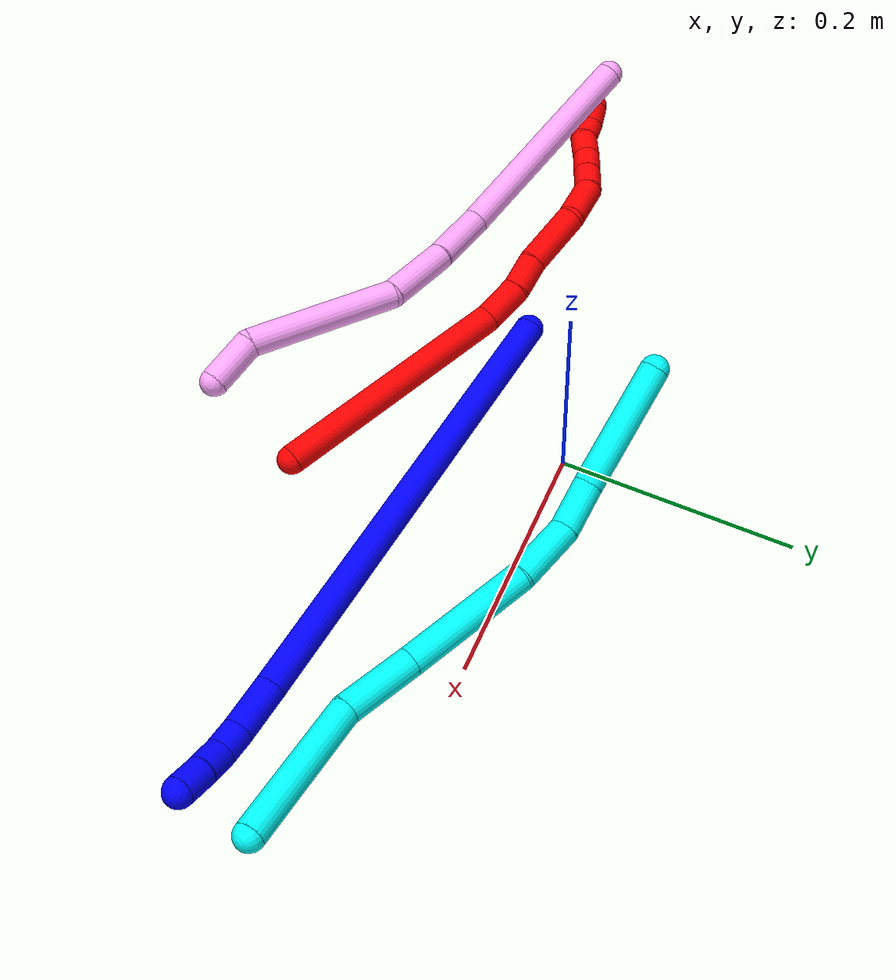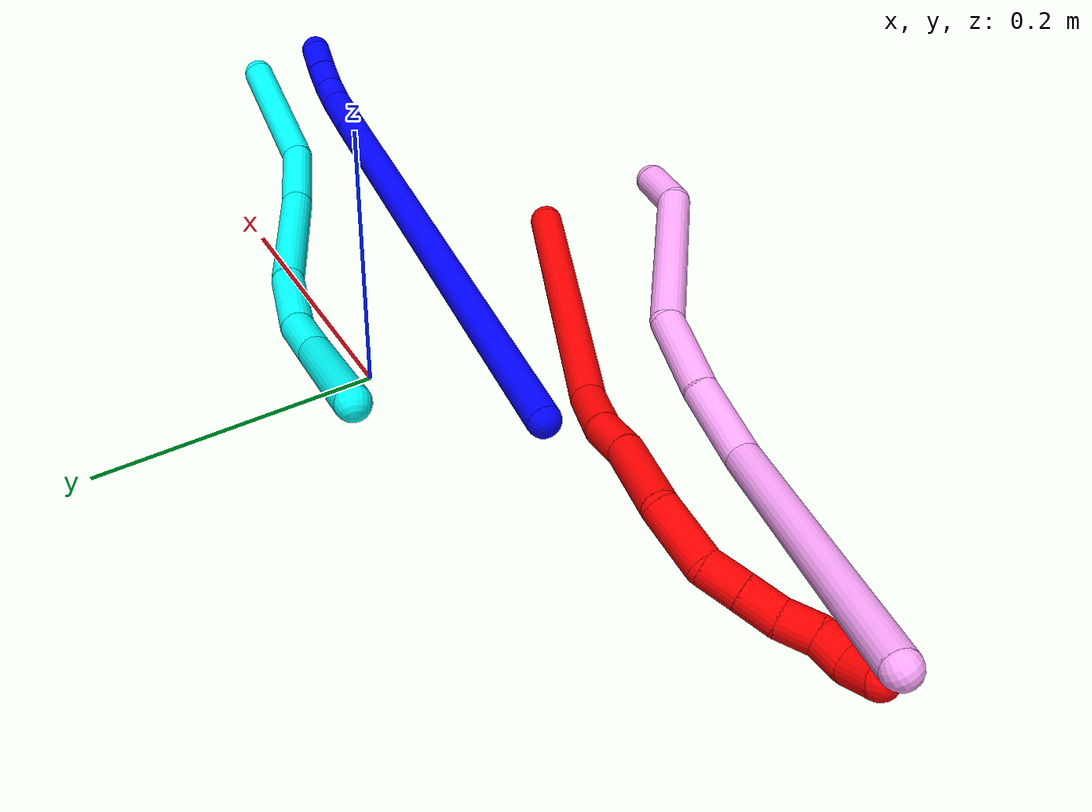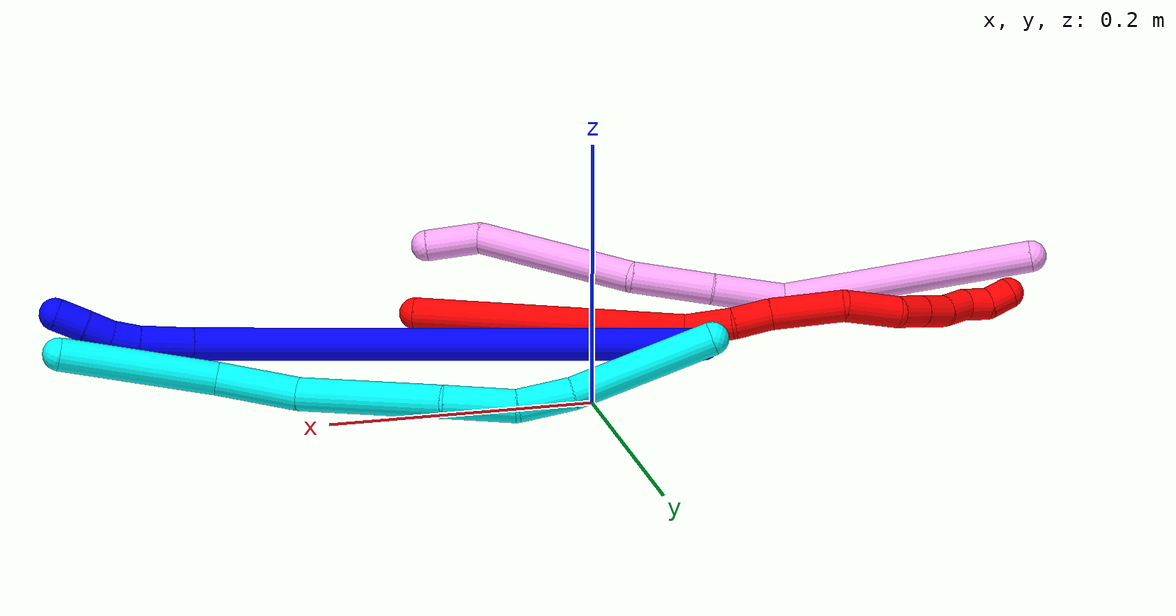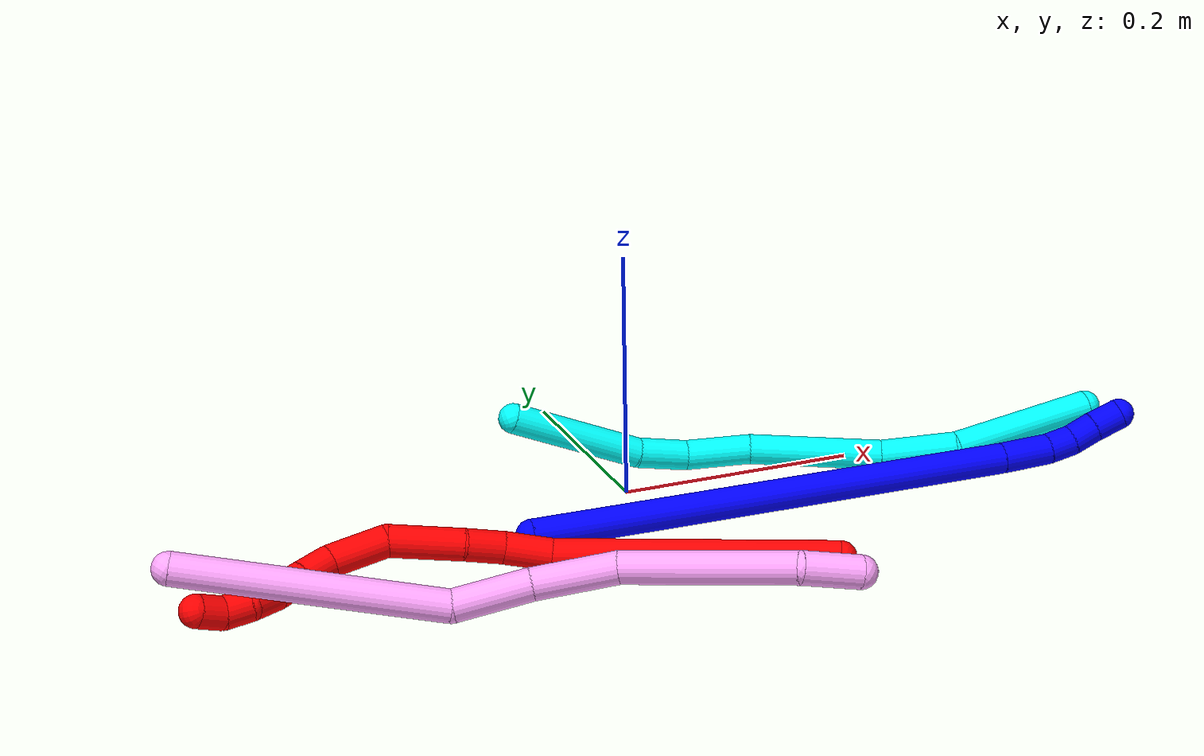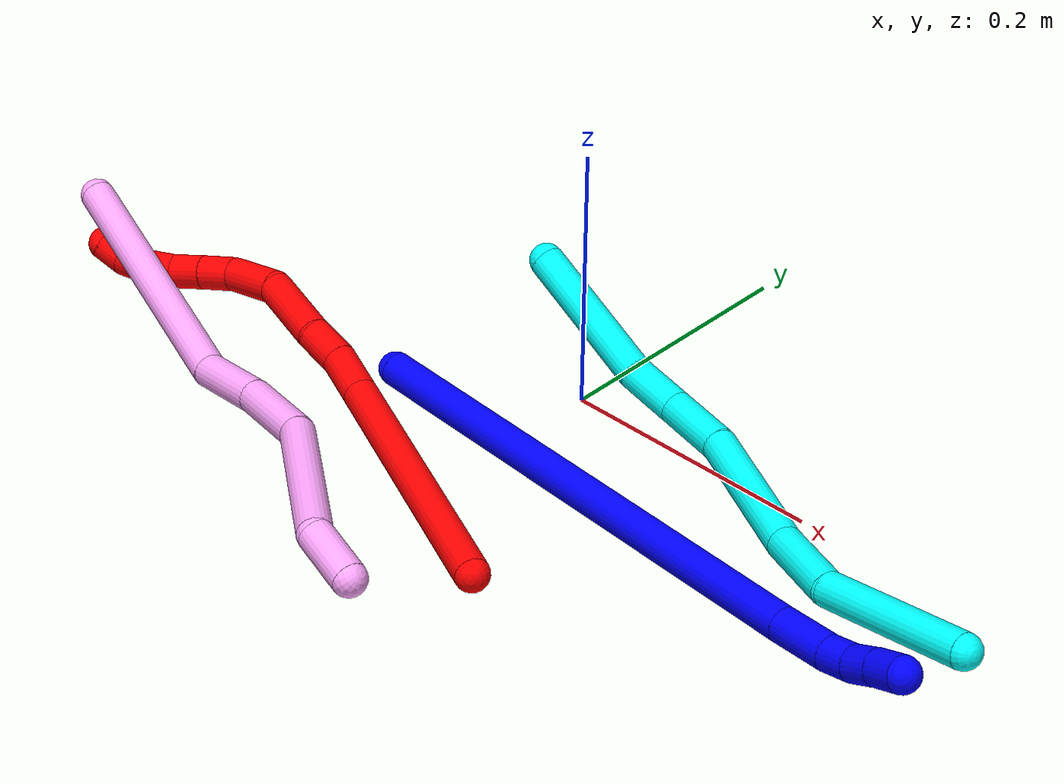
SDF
<sdf version="1.7">
 <world name="default">
  <plugin name="TubeGeneratorPlugin" filename="libtube_generator_plugin.so"/>
  <model name="photoneo_s_sensor">
   <static>1</static>
   <pose>0 0 2 1.57079 1.57079 3.14159</pose>
   <link name="link">
    <inertial><mass>0.1</mass></inertial>
    <sensor name="sensor" type="depth">
     <update_rate>30</update_rate>
     <camera>
      <horizontal_fov>1.22</horizontal_fov>
      <image><width>1920</width><height>1200</height><format>B8G8R8</format></image>
      <clip><near>0.1</near><far>4</far></clip>
      <depth_camera><output>points</output></depth_camera>
     </camera>
     <plugin name="camera_plugin" filename="libgazebo_ros_depth_camera.so">
      <baseline>0.2</baseline>
      <alwaysOn>1</alwaysOn>
      <updateRate>0.0</updateRate>
      <cameraName>camera_ir</cameraName>
      <imageTopicName>/camera/color/image_raw</imageTopicName>
      <cameraInfoTopicName>/camera/color/camera_info</cameraInfoTopicName>
      <depthImageTopicName>/camera/depth/image_raw</depthImageTopicName>
      <depthImageCameraInfoTopicName>/camera/depth/camera_info</depthImageCameraInfoTopicName>
      <pointCloudTopicName>/camera/depth/points</pointCloudTopicName>
      <frameName>fr_optical</frameName>
      <pointCloudCutoff>0.1</pointCloudCutoff>
      <pointCloudCutoffMax>2.0</pointCloudCutoffMax>
      <distortionK1>0</distortionK1>
      <distortionK2>0</distortionK2>
      <distortionK3>0</distortionK3>
      <distortionT1>0</distortionT1>
      <distortionT2>0</distortionT2>
      <CxPrime>0</CxPrime>
      <Cx>0</Cx>
      <Cy>0</Cy>
      <focalLength>0</focalLength>
      <hackBaseline>0</hackBaseline>
     </plugin>
    </sensor>
   </link>
  </model>
  <gravity>0 0 -9.8</gravity>
  <magnetic_field>6e-06 2.3e-05 -4.2e-05</magnetic_field>
  <atmosphere type="adiabatic"/>
  <physics name="default_physics" default="0" type="ode">
   <max_step_size>0.003</max_step_size>
   <real_time_factor>1</real_time_factor>
   <real_time_update_rate>1000</real_time_update_rate>
   <max_contacts>10000</max_contacts>
   <ode>
    <solver>
     <type>quick</type>
     <iters>100</iters>
     <sor>1.3</sor>
     <use_dynamic_moi_rescaling>0</use_dynamic_moi_rescaling>
    </solver>
    <constraints>
     <contact_max_correcting_vel>0</contact_max_correcting_vel>
     <contact_surface_layer>0.001</contact_surface_layer>
     <cfm>0</cfm>
     <erp>0.2</erp>
    </constraints>
   </ode>
  </physics>
  <scene><ambient>0.4 0.4 0.4 1</ambient><background>0.7 0.7 0.7 1</background><shadows>0</shadows></scene>
  <audio><device>default</device></audio>
  <spherical_coordinates>
   <surface_model>EARTH_WGS84</surface_model>
   <latitude_deg>0</latitude_deg>
   <longitude_deg>0</longitude_deg>
   <elevation>0</elevation>
   <heading_deg>0</heading_deg>
  </spherical_coordinates>
  <model name="bin">
   <static>1</static>
   <link name="bottom">
    <collision name="collision-bottom">
     <pose>0 0 -0.01 0 -0 0</pose>
     <geometry><box><size>0.8 0.6 0.02</size></box></geometry>
     <surface>
      <friction><ode><mu>100</mu><mu2>100</mu2></ode></friction>
      <contact><collide_bitmask>65535</collide_bitmask></contact>
     </surface>
    </collision>
   </link>
   <link name="west_wall">
    <collision name="collision-west_wall">
     <pose>-0.41 0 0.1 0 -0 0</pose>
     <geometry><box><size>0.02 0.6 0.2</size></box></geometry>
     <surface>
      <friction><ode><mu>100</mu><mu2>100</mu2></ode></friction>
      <contact><collide_bitmask>65535</collide_bitmask></contact>
     </surface>
    </collision>
   </link>
   <link name="east_wall">
    <collision name="collision-east_wall">
     <pose>0.41 0 0.1 0 -0 0</pose>
     <geometry><box><size>0.02 0.6 0.2</size></box></geometry>
     <surface>
      <friction><ode><mu>100</mu><mu2>100</mu2></ode></friction>
      <contact><collide_bitmask>65535</collide_bitmask></contact>
     </surface>
    </collision>
   </link>
   <link name="south_wall">
    <collision name="collision-south_wall">
     <pose>0 -0.31 0.1 0 -0 0</pose>
     <geometry><box><size>0.8 0.02 0.2</size></box></geometry>
     <surface>
      <friction><ode><mu>100</mu><mu2>100</mu2></ode></friction>
      <contact><collide_bitmask>65535</collide_bitmask></contact>
     </surface>
    </collision>
   </link>
   <link name="north_wall">
    <collision name="collision-north_wall">
     <pose>0 0.31 0.1 0 -0 0</pose>
     <geometry><box><size>0.8 0.02 0.2</size></box></geometry>
     <surface>
      <friction><ode><mu>100</mu><mu2>100</mu2></ode></friction>
      <contact><collide_bitmask>65535</collide_bitmask></contact>
     </surface>
    </collision>
   </link>
  </model>
  <model name="1">
   <static>0</static>
   <link name="1">
    <collision name="collision-cylinder-e_1_1_4">
     <pose>0.149942 -0.1015 0.075233 0.932943 0.870611 0.460056</pose>
     <geometry><cylinder><radius>0.0125</radius><length>0.392147</length></cylinder></geometry>
     <surface>
      <friction><ode><mu>1.16</mu><mu2>1.16</mu2><slip1>0</slip1><slip2>0</slip2></ode></friction>
      <contact><ode><kp>1e+06</kp><kd>1</kd><max_vel>0</max_vel><min_depth>0.001</min_depth></ode></contact>
     </surface>
    </collision>
    <visual name="visual-cylinder-e_1_1_4">
     <pose>0.149942 -0.1015 0.075233 0.932943 0.870611 0.460056</pose>
     <geometry><cylinder><radius>0.0125</radius><length>0.392147</length></cylinder></geometry>
     <material><ambient>0 0 1 1</ambient></material>
    </visual>
    <collision name="collision-cylinder-e_2_4_5">
     <pose>0.315717 -0.213041 0.158833 0.876105 0.88071 0.434471</pose>
     <geometry><cylinder><radius>0.0125</radius><length>0.041061</length></cylinder></geometry>
     <surface>
      <friction><ode><mu>1.16</mu><mu2>1.16</mu2><slip1>0</slip1><slip2>0</slip2></ode></friction>
      <contact><ode><kp>1e+06</kp><kd>1</kd><max_vel>0</max_vel><min_depth>0.001</min_depth></ode></contact>
     </surface>
    </collision>
    <visual name="visual-cylinder-e_2_4_5">
     <pose>0.315717 -0.213041 0.158833 0.876105 0.88071 0.434471</pose>
     <geometry><cylinder><radius>0.0125</radius><length>0.041061</length></cylinder></geometry>
     <material><ambient>0 0 1 1</ambient></material>
    </visual>
    <collision name="collision-cylinder-e_3_5_6">
     <pose>0.340086 -0.226975 0.172614 0.623353 0.907608 0.311738</pose>
     <geometry><cylinder><radius>0.0125</radius><length>0.021665</length></cylinder></geometry>
     <surface>
      <friction><ode><mu>1.16</mu><mu2>1.16</mu2><slip1>0</slip1><slip2>0</slip2></ode></friction>
      <contact><ode><kp>1e+06</kp><kd>1</kd><max_vel>0</max_vel><min_depth>0.001</min_depth></ode></contact>
     </surface>
    </collision>
    <visual name="visual-cylinder-e_3_5_6">
     <pose>0.340086 -0.226975 0.172614 0.623353 0.907608 0.311738</pose>
     <geometry><cylinder><radius>0.0125</radius><length>0.021665</length></cylinder></geometry>
     <material><ambient>0 0 1 1</ambient></material>
    </visual>
    <collision name="collision-cylinder-e_4_6_7">
     <pose>0.356916 -0.232768 0.184628 0.280263 0.879199 0.132481</pose>
     <geometry><cylinder><radius>0.0125</radius><length>0.021535</length></cylinder></geometry>
     <surface>
      <friction><ode><mu>1.16</mu><mu2>1.16</mu2><slip1>0</slip1><slip2>0</slip2></ode></friction>
      <contact><ode><kp>1e+06</kp><kd>1</kd><max_vel>0</max_vel><min_depth>0.001</min_depth></ode></contact>
     </surface>
    </collision>
    <visual name="visual-cylinder-e_4_6_7">
     <pose>0.356916 -0.232768 0.184628 0.280263 0.879199 0.132481</pose>
     <geometry><cylinder><radius>0.0125</radius><length>0.021535</length></cylinder></geometry>
     <material><ambient>0 0 1 1</ambient></material>
    </visual>
    <collision name="collision-cylinder-e_5_7_2">
     <pose>0.373817 -0.237525 0.198769 0.362186 0.817949 0.158383</pose>
     <geometry><cylinder><radius>0.0125</radius><length>0.023592</length></cylinder></geometry>
     <surface>
      <friction><ode><mu>1.16</mu><mu2>1.16</mu2><slip1>0</slip1><slip2>0</slip2></ode></friction>
      <contact><ode><kp>1e+06</kp><kd>1</kd><max_vel>0</max_vel><min_depth>0.001</min_depth></ode></contact>
     </surface>
    </collision>
    <visual name="visual-cylinder-e_5_7_2">
     <pose>0.373817 -0.237525 0.198769 0.362186 0.817949 0.158383</pose>
     <geometry><cylinder><radius>0.0125</radius><length>0.023592</length></cylinder></geometry>
     <material><ambient>0 0 1 1</ambient></material>
    </visual>
    <collision name="collision-sphere-2">
     <pose>0.382425 -0.240382 0.206311 0 -0 0</pose>
     <geometry><sphere><radius>0.0125</radius></sphere></geometry>
     <surface>
      <friction><ode><mu>1.16</mu><mu2>1.16</mu2><slip1>0</slip1><slip2>0</slip2></ode></friction>
      <contact><ode><kp>1e+06</kp><kd>1</kd><max_vel>0</max_vel><min_depth>0.001</min_depth></ode></contact>
     </surface>
    </collision>
    <visual name="visual-sphere-2">
     <pose>0.382425 -0.240382 0.206311 0 -0 0</pose>
     <geometry><sphere><radius>0.0125</radius></sphere></geometry>
     <material><ambient>0 0 1 1</ambient></material>
    </visual>
    <collision name="collision-sphere-7">
     <pose>0.365209 -0.234667 0.191227 0 -0 0</pose>
     <geometry><sphere><radius>0.0125</radius></sphere></geometry>
     <surface>
      <friction><ode><mu>1.16</mu><mu2>1.16</mu2><slip1>0</slip1><slip2>0</slip2></ode></friction>
      <contact><ode><kp>1e+06</kp><kd>1</kd><max_vel>0</max_vel><min_depth>0.001</min_depth></ode></contact>
     </surface>
    </collision>
    <visual name="visual-sphere-7">
     <pose>0.365209 -0.234667 0.191227 0 -0 0</pose>
     <geometry><sphere><radius>0.0125</radius></sphere></geometry>
     <material><ambient>0 0 1 1</ambient></material>
    </visual>
    <collision name="collision-sphere-6">
     <pose>0.348623 -0.230868 0.178029 0 -0 0</pose>
     <geometry><sphere><radius>0.0125</radius></sphere></geometry>
     <surface>
      <friction><ode><mu>1.16</mu><mu2>1.16</mu2><slip1>0</slip1><slip2>0</slip2></ode></friction>
      <contact><ode><kp>1e+06</kp><kd>1</kd><max_vel>0</max_vel><min_depth>0.001</min_depth></ode></contact>
     </surface>
    </collision>
    <visual name="visual-sphere-6">
     <pose>0.348623 -0.230868 0.178029 0 -0 0</pose>
     <geometry><sphere><radius>0.0125</radius></sphere></geometry>
     <material><ambient>0 0 1 1</ambient></material>
    </visual>
    <collision name="collision-sphere-5">
     <pose>0.33155 -0.223082 0.167199 0 -0 0</pose>
     <geometry><sphere><radius>0.0125</radius></sphere></geometry>
     <surface>
      <friction><ode><mu>1.16</mu><mu2>1.16</mu2><slip1>0</slip1><slip2>0</slip2></ode></friction>
      <contact><ode><kp>1e+06</kp><kd>1</kd><max_vel>0</max_vel><min_depth>0.001</min_depth></ode></contact>
     </surface>
    </collision>
    <visual name="visual-sphere-5">
     <pose>0.33155 -0.223082 0.167199 0 -0 0</pose>
     <geometry><sphere><radius>0.0125</radius></sphere></geometry>
     <material><ambient>0 0 1 1</ambient></material>
    </visual>
    <collision name="collision-sphere-1">
     <geometry><sphere><radius>0.0125</radius></sphere></geometry>
     <surface>
      <friction><ode><mu>1.16</mu><mu2>1.16</mu2><slip1>0</slip1><slip2>0</slip2></ode></friction>
      <contact><ode><kp>1e+06</kp><kd>1</kd><max_vel>0</max_vel><min_depth>0.001</min_depth></ode></contact>
     </surface>
    </collision>
    <visual name="visual-sphere-1">
     <geometry><sphere><radius>0.0125</radius></sphere></geometry>
     <material><ambient>0 0 1 1</ambient></material>
    </visual>
    <collision name="collision-sphere-4">
     <pose>0.299884 -0.203 0.150466 0 -0 0</pose>
     <geometry><sphere><radius>0.0125</radius></sphere></geometry>
     <surface>
      <friction><ode><mu>1.16</mu><mu2>1.16</mu2><slip1>0</slip1><slip2>0</slip2></ode></friction>
      <contact><ode><kp>1e+06</kp><kd>1</kd><max_vel>0</max_vel><min_depth>0.001</min_depth></ode></contact>
     </surface>
    </collision>
    <visual name="visual-sphere-4">
     <pose>0.299884 -0.203 0.150466 0 -0 0</pose>
     <geometry><sphere><radius>0.0125</radius></sphere></geometry>
     <material><ambient>0 0 1 1</ambient></material>
    </visual>
    <inertial>
     <pose>0.191272 -0.128169 0.096858 0 -0 0</pose>
     <mass>0.5</mass>
     <inertia>
      <ixx>0.004393</ixx>
      <ixy>0</ixy>
      <ixz>0</ixz>
      <iyy>0.005502</iyy>
      <iyz>0</iyz>
      <izz>-0.001234</izz>
     </inertia>
    </inertial>
   </link>
   <pose>-0.108279 -0.076383 0.012288 0.816481 -0.206443 0.574996</pose>
  </model>
  <model name="2">
   <static>0</static>
   <link name="2">
    <collision name="collision-cylinder-e_1_1_4">
     <pose>-0.0559 0.020686 0.090403 -0.22495 -0.542448 0.062798</pose>
     <geometry><cylinder><radius>0.0125</radius><length>0.216568</length></cylinder></geometry>
     <surface>
      <friction><ode><mu>1.16</mu><mu2>1.16</mu2><slip1>0</slip1><slip2>0</slip2></ode></friction>
      <contact><ode><kp>1e+06</kp><kd>1</kd><max_vel>0</max_vel><min_depth>0.001</min_depth></ode></contact>
     </surface>
    </collision>
    <visual name="visual-cylinder-e_1_1_4">
     <pose>-0.0559 0.020686 0.090403 -0.22495 -0.542448 0.062798</pose>
     <geometry><cylinder><radius>0.0125</radius><length>0.216568</length></cylinder></geometry>
     <material><ambient>1 0 0 1</ambient></material>
    </visual>
    <collision name="collision-cylinder-e_2_4_5">
     <pose>-0.124457 0.044302 0.194158 -0.215954 -0.746997 0.08491</pose>
     <geometry><cylinder><radius>0.0125</radius><length>0.03726</length></cylinder></geometry>
     <surface>
      <friction><ode><mu>1.16</mu><mu2>1.16</mu2><slip1>0</slip1><slip2>0</slip2></ode></friction>
      <contact><ode><kp>1e+06</kp><kd>1</kd><max_vel>0</max_vel><min_depth>0.001</min_depth></ode></contact>
     </surface>
    </collision>
    <visual name="visual-cylinder-e_2_4_5">
     <pose>-0.124457 0.044302 0.194158 -0.215954 -0.746997 0.08491</pose>
     <geometry><cylinder><radius>0.0125</radius><length>0.03726</length></cylinder></geometry>
     <material><ambient>1 0 0 1</ambient></material>
    </visual>
    <collision name="collision-cylinder-e_3_5_6">
     <pose>-0.148624 0.052037 0.216101 -0.510008 -0.863147 0.238956</pose>
     <geometry><cylinder><radius>0.0125</radius><length>0.030289</length></cylinder></geometry>
     <surface>
      <friction><ode><mu>1.16</mu><mu2>1.16</mu2><slip1>0</slip1><slip2>0</slip2></ode></friction>
      <contact><ode><kp>1e+06</kp><kd>1</kd><max_vel>0</max_vel><min_depth>0.001</min_depth></ode></contact>
     </surface>
    </collision>
    <visual name="visual-cylinder-e_3_5_6">
     <pose>-0.148624 0.052037 0.216101 -0.510008 -0.863147 0.238956</pose>
     <geometry><cylinder><radius>0.0125</radius><length>0.030289</length></cylinder></geometry>
     <material><ambient>1 0 0 1</ambient></material>
    </visual>
    <collision name="collision-cylinder-e_4_6_7">
     <pose>-0.179223 0.064319 0.244643 -0.358577 -0.730658 0.138423</pose>
     <geometry><cylinder><radius>0.0125</radius><length>0.057213</length></cylinder></geometry>
     <surface>
      <friction><ode><mu>1.16</mu><mu2>1.16</mu2><slip1>0</slip1><slip2>0</slip2></ode></friction>
      <contact><ode><kp>1e+06</kp><kd>1</kd><max_vel>0</max_vel><min_depth>0.001</min_depth></ode></contact>
     </surface>
    </collision>
    <visual name="visual-cylinder-e_4_6_7">
     <pose>-0.179223 0.064319 0.244643 -0.358577 -0.730658 0.138423</pose>
     <geometry><cylinder><radius>0.0125</radius><length>0.057213</length></cylinder></geometry>
     <material><ambient>1 0 0 1</ambient></material>
    </visual>
    <collision name="collision-cylinder-e_5_7_8">
     <pose>-0.20878 0.085457 0.278762 -0.767112 -0.488735 0.200572</pose>
     <geometry><cylinder><radius>0.0125</radius><length>0.044584</length></cylinder></geometry>
     <surface>
      <friction><ode><mu>1.16</mu><mu2>1.16</mu2><slip1>0</slip1><slip2>0</slip2></ode></friction>
      <contact><ode><kp>1e+06</kp><kd>1</kd><max_vel>0</max_vel><min_depth>0.001</min_depth></ode></contact>
     </surface>
    </collision>
    <visual name="visual-cylinder-e_5_7_8">
     <pose>-0.20878 0.085457 0.278762 -0.767112 -0.488735 0.200572</pose>
     <geometry><cylinder><radius>0.0125</radius><length>0.044584</length></cylinder></geometry>
     <material><ambient>1 0 0 1</ambient></material>
    </visual>
    <collision name="collision-cylinder-e_6_8_9">
     <pose>-0.225468 0.109497 0.29686 -1.20897 -0.510924 0.356959</pose>
     <geometry><cylinder><radius>0.0125</radius><length>0.025445</length></cylinder></geometry>
     <surface>
      <friction><ode><mu>1.16</mu><mu2>1.16</mu2><slip1>0</slip1><slip2>0</slip2></ode></friction>
      <contact><ode><kp>1e+06</kp><kd>1</kd><max_vel>0</max_vel><min_depth>0.001</min_depth></ode></contact>
     </surface>
    </collision>
    <visual name="visual-cylinder-e_6_8_9">
     <pose>-0.225468 0.109497 0.29686 -1.20897 -0.510924 0.356959</pose>
     <geometry><cylinder><radius>0.0125</radius><length>0.025445</length></cylinder></geometry>
     <material><ambient>1 0 0 1</ambient></material>
    </visual>
    <collision name="collision-cylinder-e_7_9_10">
     <pose>-0.237533 0.130106 0.30466 -1.20894 -0.490684 0.342507</pose>
     <geometry><cylinder><radius>0.0125</radius><length>0.024803</length></cylinder></geometry>
     <surface>
      <friction><ode><mu>1.16</mu><mu2>1.16</mu2><slip1>0</slip1><slip2>0</slip2></ode></friction>
      <contact><ode><kp>1e+06</kp><kd>1</kd><max_vel>0</max_vel><min_depth>0.001</min_depth></ode></contact>
     </surface>
    </collision>
    <visual name="visual-cylinder-e_7_9_10">
     <pose>-0.237533 0.130106 0.30466 -1.20894 -0.490684 0.342507</pose>
     <geometry><cylinder><radius>0.0125</radius><length>0.024803</length></cylinder></geometry>
     <material><ambient>1 0 0 1</ambient></material>
    </visual>
    <collision name="collision-cylinder-e_8_10_11">
     <pose>-0.250741 0.149251 0.310467 -1.35715 -0.679133 0.554959</pose>
     <geometry><cylinder><radius>0.0125</radius><length>0.023449</length></cylinder></geometry>
     <surface>
      <friction><ode><mu>1.16</mu><mu2>1.16</mu2><slip1>0</slip1><slip2>0</slip2></ode></friction>
      <contact><ode><kp>1e+06</kp><kd>1</kd><max_vel>0</max_vel><min_depth>0.001</min_depth></ode></contact>
     </surface>
    </collision>
    <visual name="visual-cylinder-e_8_10_11">
     <pose>-0.250741 0.149251 0.310467 -1.35715 -0.679133 0.554959</pose>
     <geometry><cylinder><radius>0.0125</radius><length>0.023449</length></cylinder></geometry>
     <material><ambient>1 0 0 1</ambient></material>
    </visual>
    <collision name="collision-cylinder-e_9_11_12">
     <pose>-0.263892 0.164581 0.317814 -0.869908 -0.603594 0.287293</pose>
     <geometry><cylinder><radius>0.0125</radius><length>0.020388</length></cylinder></geometry>
     <surface>
      <friction><ode><mu>1.16</mu><mu2>1.16</mu2><slip1>0</slip1><slip2>0</slip2></ode></friction>
      <contact><ode><kp>1e+06</kp><kd>1</kd><max_vel>0</max_vel><min_depth>0.001</min_depth></ode></contact>
     </surface>
    </collision>
    <visual name="visual-cylinder-e_9_11_12">
     <pose>-0.263892 0.164581 0.317814 -0.869908 -0.603594 0.287293</pose>
     <geometry><cylinder><radius>0.0125</radius><length>0.020388</length></cylinder></geometry>
     <material><ambient>1 0 0 1</ambient></material>
    </visual>
    <collision name="collision-cylinder-e_10_12_2">
     <pose>-0.278286 0.175018 0.326346 -0.911163 -1.03678 0.545059</pose>
     <geometry><cylinder><radius>0.0125</radius><length>0.020001</length></cylinder></geometry>
     <surface>
      <friction><ode><mu>1.16</mu><mu2>1.16</mu2><slip1>0</slip1><slip2>0</slip2></ode></friction>
      <contact><ode><kp>1e+06</kp><kd>1</kd><max_vel>0</max_vel><min_depth>0.001</min_depth></ode></contact>
     </surface>
    </collision>
    <visual name="visual-cylinder-e_10_12_2">
     <pose>-0.278286 0.175018 0.326346 -0.911163 -1.03678 0.545059</pose>
     <geometry><cylinder><radius>0.0125</radius><length>0.020001</length></cylinder></geometry>
     <material><ambient>1 0 0 1</ambient></material>
    </visual>
    <collision name="collision-sphere-2">
     <pose>-0.286894 0.17904 0.329465 0 -0 0</pose>
     <geometry><sphere><radius>0.0125</radius></sphere></geometry>
     <surface>
      <friction><ode><mu>1.16</mu><mu2>1.16</mu2><slip1>0</slip1><slip2>0</slip2></ode></friction>
      <contact><ode><kp>1e+06</kp><kd>1</kd><max_vel>0</max_vel><min_depth>0.001</min_depth></ode></contact>
     </surface>
    </collision>
    <visual name="visual-sphere-2">
     <pose>-0.286894 0.17904 0.329465 0 -0 0</pose>
     <geometry><sphere><radius>0.0125</radius></sphere></geometry>
     <material><ambient>1 0 0 1</ambient></material>
    </visual>
    <collision name="collision-sphere-12">
     <pose>-0.269678 0.170996 0.323226 0 -0 0</pose>
     <geometry><sphere><radius>0.0125</radius></sphere></geometry>
     <surface>
      <friction><ode><mu>1.16</mu><mu2>1.16</mu2><slip1>0</slip1><slip2>0</slip2></ode></friction>
      <contact><ode><kp>1e+06</kp><kd>1</kd><max_vel>0</max_vel><min_depth>0.001</min_depth></ode></contact>
     </surface>
    </collision>
    <visual name="visual-sphere-12">
     <pose>-0.269678 0.170996 0.323226 0 -0 0</pose>
     <geometry><sphere><radius>0.0125</radius></sphere></geometry>
     <material><ambient>1 0 0 1</ambient></material>
    </visual>
    <collision name="collision-sphere-11">
     <pose>-0.258105 0.158167 0.312401 0 -0 0</pose>
     <geometry><sphere><radius>0.0125</radius></sphere></geometry>
     <surface>
      <friction><ode><mu>1.16</mu><mu2>1.16</mu2><slip1>0</slip1><slip2>0</slip2></ode></friction>
      <contact><ode><kp>1e+06</kp><kd>1</kd><max_vel>0</max_vel><min_depth>0.001</min_depth></ode></contact>
     </surface>
    </collision>
    <visual name="visual-sphere-11">
     <pose>-0.258105 0.158167 0.312401 0 -0 0</pose>
     <geometry><sphere><radius>0.0125</radius></sphere></geometry>
     <material><ambient>1 0 0 1</ambient></material>
    </visual>
    <collision name="collision-sphere-10">
     <pose>-0.243377 0.140336 0.308533 0 -0 0</pose>
     <geometry><sphere><radius>0.0125</radius></sphere></geometry>
     <surface>
      <friction><ode><mu>1.16</mu><mu2>1.16</mu2><slip1>0</slip1><slip2>0</slip2></ode></friction>
      <contact><ode><kp>1e+06</kp><kd>1</kd><max_vel>0</max_vel><min_depth>0.001</min_depth></ode></contact>
     </surface>
    </collision>
    <visual name="visual-sphere-10">
     <pose>-0.243377 0.140336 0.308533 0 -0 0</pose>
     <geometry><sphere><radius>0.0125</radius></sphere></geometry>
     <material><ambient>1 0 0 1</ambient></material>
    </visual>
    <collision name="collision-sphere-9">
     <pose>-0.231689 0.119876 0.300788 0 -0 0</pose>
     <geometry><sphere><radius>0.0125</radius></sphere></geometry>
     <surface>
      <friction><ode><mu>1.16</mu><mu2>1.16</mu2><slip1>0</slip1><slip2>0</slip2></ode></friction>
      <contact><ode><kp>1e+06</kp><kd>1</kd><max_vel>0</max_vel><min_depth>0.001</min_depth></ode></contact>
     </surface>
    </collision>
    <visual name="visual-sphere-9">
     <pose>-0.231689 0.119876 0.300788 0 -0 0</pose>
     <geometry><sphere><radius>0.0125</radius></sphere></geometry>
     <material><ambient>1 0 0 1</ambient></material>
    </visual>
    <collision name="collision-sphere-4">
     <pose>-0.1118 0.041373 0.180806 0 -0 0</pose>
     <geometry><sphere><radius>0.0125</radius></sphere></geometry>
     <surface>
      <friction><ode><mu>1.16</mu><mu2>1.16</mu2><slip1>0</slip1><slip2>0</slip2></ode></friction>
      <contact><ode><kp>1e+06</kp><kd>1</kd><max_vel>0</max_vel><min_depth>0.001</min_depth></ode></contact>
     </surface>
    </collision>
    <visual name="visual-sphere-4">
     <pose>-0.1118 0.041373 0.180806 0 -0 0</pose>
     <geometry><sphere><radius>0.0125</radius></sphere></geometry>
     <material><ambient>1 0 0 1</ambient></material>
    </visual>
    <collision name="collision-sphere-1">
     <geometry><sphere><radius>0.0125</radius></sphere></geometry>
     <surface>
      <friction><ode><mu>1.16</mu><mu2>1.16</mu2><slip1>0</slip1><slip2>0</slip2></ode></friction>
      <contact><ode><kp>1e+06</kp><kd>1</kd><max_vel>0</max_vel><min_depth>0.001</min_depth></ode></contact>
     </surface>
    </collision>
    <visual name="visual-sphere-1">
     <geometry><sphere><radius>0.0125</radius></sphere></geometry>
     <material><ambient>1 0 0 1</ambient></material>
    </visual>
    <collision name="collision-sphere-8">
     <pose>-0.219246 0.099117 0.292931 0 -0 0</pose>
     <geometry><sphere><radius>0.0125</radius></sphere></geometry>
     <surface>
      <friction><ode><mu>1.16</mu><mu2>1.16</mu2><slip1>0</slip1><slip2>0</slip2></ode></friction>
      <contact><ode><kp>1e+06</kp><kd>1</kd><max_vel>0</max_vel><min_depth>0.001</min_depth></ode></contact>
     </surface>
    </collision>
    <visual name="visual-sphere-8">
     <pose>-0.219246 0.099117 0.292931 0 -0 0</pose>
     <geometry><sphere><radius>0.0125</radius></sphere></geometry>
     <material><ambient>1 0 0 1</ambient></material>
    </visual>
    <collision name="collision-sphere-5">
     <pose>-0.137115 0.047231 0.207509 0 -0 0</pose>
     <geometry><sphere><radius>0.0125</radius></sphere></geometry>
     <surface>
      <friction><ode><mu>1.16</mu><mu2>1.16</mu2><slip1>0</slip1><slip2>0</slip2></ode></friction>
      <contact><ode><kp>1e+06</kp><kd>1</kd><max_vel>0</max_vel><min_depth>0.001</min_depth></ode></contact>
     </surface>
    </collision>
    <visual name="visual-sphere-5">
     <pose>-0.137115 0.047231 0.207509 0 -0 0</pose>
     <geometry><sphere><radius>0.0125</radius></sphere></geometry>
     <material><ambient>1 0 0 1</ambient></material>
    </visual>
    <collision name="collision-sphere-6">
     <pose>-0.160132 0.056843 0.224693 0 -0 0</pose>
     <geometry><sphere><radius>0.0125</radius></sphere></geometry>
     <surface>
      <friction><ode><mu>1.16</mu><mu2>1.16</mu2><slip1>0</slip1><slip2>0</slip2></ode></friction>
      <contact><ode><kp>1e+06</kp><kd>1</kd><max_vel>0</max_vel><min_depth>0.001</min_depth></ode></contact>
     </surface>
    </collision>
    <visual name="visual-sphere-6">
     <pose>-0.160132 0.056843 0.224693 0 -0 0</pose>
     <geometry><sphere><radius>0.0125</radius></sphere></geometry>
     <material><ambient>1 0 0 1</ambient></material>
    </visual>
    <collision name="collision-sphere-7">
     <pose>-0.198314 0.071796 0.264592 0 -0 0</pose>
     <geometry><sphere><radius>0.0125</radius></sphere></geometry>
     <surface>
      <friction><ode><mu>1.16</mu><mu2>1.16</mu2><slip1>0</slip1><slip2>0</slip2></ode></friction>
      <contact><ode><kp>1e+06</kp><kd>1</kd><max_vel>0</max_vel><min_depth>0.001</min_depth></ode></contact>
     </surface>
    </collision>
    <visual name="visual-sphere-7">
     <pose>-0.198314 0.071796 0.264592 0 -0 0</pose>
     <geometry><sphere><radius>0.0125</radius></sphere></geometry>
     <material><ambient>1 0 0 1</ambient></material>
    </visual>
    <inertial>
     <pose>-0.138523 0.063131 0.190361 0 -0 0</pose>
     <mass>0.5</mass>
     <inertia>
      <ixx>0.000796</ixx>
      <ixy>0</ixy>
      <ixz>0</ixz>
      <iyy>0.000944</iyy>
      <iyz>0</iyz>
      <izz>0.000313</izz>
     </inertia>
    </inertial>
   </link>
   <pose>0.091639 -0.204727 0.012175 -2.15564 0.872746 0.201803</pose>
  </model>
  <model name="3">
   <static>0</static>
   <link name="3">
    <collision name="collision-cylinder-e_1_1_4">
     <pose>-0.011614 -0.004048 -0.058046 3.07196 -0.197002 -2.46388</pose>
     <geometry><cylinder><radius>0.0125</radius><length>0.11867</length></cylinder></geometry>
     <surface>
      <friction><ode><mu>1.16</mu><mu2>1.16</mu2><slip1>0</slip1><slip2>0</slip2></ode></friction>
      <contact><ode><kp>1e+06</kp><kd>1</kd><max_vel>0</max_vel><min_depth>0.001</min_depth></ode></contact>
     </surface>
    </collision>
    <visual name="visual-cylinder-e_1_1_4">
     <pose>-0.011614 -0.004048 -0.058046 3.07196 -0.197002 -2.46388</pose>
     <geometry><cylinder><radius>0.0125</radius><length>0.11867</length></cylinder></geometry>
     <material><ambient>0.003922 1 0.996078 1</ambient></material>
    </visual>
    <collision name="collision-cylinder-e_2_4_5">
     <pose>-0.026977 -0.000602 -0.146483 -2.8998 -0.119216 0.913225</pose>
     <geometry><cylinder><radius>0.0125</radius><length>0.06305</length></cylinder></geometry>
     <surface>
      <friction><ode><mu>1.16</mu><mu2>1.16</mu2><slip1>0</slip1><slip2>0</slip2></ode></friction>
      <contact><ode><kp>1e+06</kp><kd>1</kd><max_vel>0</max_vel><min_depth>0.001</min_depth></ode></contact>
     </surface>
    </collision>
    <visual name="visual-cylinder-e_2_4_5">
     <pose>-0.026977 -0.000602 -0.146483 -2.8998 -0.119216 0.913225</pose>
     <geometry><cylinder><radius>0.0125</radius><length>0.06305</length></cylinder></geometry>
     <material><ambient>0.003922 1 0.996078 1</ambient></material>
    </visual>
    <collision name="collision-cylinder-e_3_5_6">
     <pose>-0.043337 0.025623 -0.227294 -2.78592 -0.230305 1.14362</pose>
     <geometry><cylinder><radius>0.0125</radius><length>0.11049</length></cylinder></geometry>
     <surface>
      <friction><ode><mu>1.16</mu><mu2>1.16</mu2><slip1>0</slip1><slip2>0</slip2></ode></friction>
      <contact><ode><kp>1e+06</kp><kd>1</kd><max_vel>0</max_vel><min_depth>0.001</min_depth></ode></contact>
     </surface>
    </collision>
    <visual name="visual-cylinder-e_3_5_6">
     <pose>-0.043337 0.025623 -0.227294 -2.78592 -0.230305 1.14362</pose>
     <geometry><cylinder><radius>0.0125</radius><length>0.11049</length></cylinder></geometry>
     <material><ambient>0.003922 1 0.996078 1</ambient></material>
    </visual>
    <collision name="collision-cylinder-e_4_6_7">
     <pose>-0.063024 0.048322 -0.303815 -2.99064 -0.261879 2.09911</pose>
     <geometry><cylinder><radius>0.0125</radius><length>0.054664</length></cylinder></geometry>
     <surface>
      <friction><ode><mu>1.16</mu><mu2>1.16</mu2><slip1>0</slip1><slip2>0</slip2></ode></friction>
      <contact><ode><kp>1e+06</kp><kd>1</kd><max_vel>0</max_vel><min_depth>0.001</min_depth></ode></contact>
     </surface>
    </collision>
    <visual name="visual-cylinder-e_4_6_7">
     <pose>-0.063024 0.048322 -0.303815 -2.99064 -0.261879 2.09911</pose>
     <geometry><cylinder><radius>0.0125</radius><length>0.054664</length></cylinder></geometry>
     <material><ambient>0.003922 1 0.996078 1</ambient></material>
    </visual>
    <collision name="collision-cylinder-e_5_7_8">
     <pose>-0.081362 0.05386 -0.348045 -3.05536 -0.554132 2.84047</pose>
     <geometry><cylinder><radius>0.0125</radius><length>0.042801</length></cylinder></geometry>
     <surface>
      <friction><ode><mu>1.16</mu><mu2>1.16</mu2><slip1>0</slip1><slip2>0</slip2></ode></friction>
      <contact><ode><kp>1e+06</kp><kd>1</kd><max_vel>0</max_vel><min_depth>0.001</min_depth></ode></contact>
     </surface>
    </collision>
    <visual name="visual-cylinder-e_5_7_8">
     <pose>-0.081362 0.05386 -0.348045 -3.05536 -0.554132 2.84047</pose>
     <geometry><cylinder><radius>0.0125</radius><length>0.042801</length></cylinder></geometry>
     <material><ambient>0.003922 1 0.996078 1</ambient></material>
    </visual>
    <collision name="collision-cylinder-e_6_8_2">
     <pose>-0.127355 0.0675 -0.407295 -2.856 -0.681084 2.3707</pose>
     <geometry><cylinder><radius>0.0125</radius><length>0.110324</length></cylinder></geometry>
     <surface>
      <friction><ode><mu>1.16</mu><mu2>1.16</mu2><slip1>0</slip1><slip2>0</slip2></ode></friction>
      <contact><ode><kp>1e+06</kp><kd>1</kd><max_vel>0</max_vel><min_depth>0.001</min_depth></ode></contact>
     </surface>
    </collision>
    <visual name="visual-cylinder-e_6_8_2">
     <pose>-0.127355 0.0675 -0.407295 -2.856 -0.681084 2.3707</pose>
     <geometry><cylinder><radius>0.0125</radius><length>0.110324</length></cylinder></geometry>
     <material><ambient>0.003922 1 0.996078 1</ambient></material>
    </visual>
    <collision name="collision-sphere-2">
     <pose>-0.162087 0.079573 -0.448414 0 -0 0</pose>
     <geometry><sphere><radius>0.0125</radius></sphere></geometry>
     <surface>
      <friction><ode><mu>1.16</mu><mu2>1.16</mu2><slip1>0</slip1><slip2>0</slip2></ode></friction>
      <contact><ode><kp>1e+06</kp><kd>1</kd><max_vel>0</max_vel><min_depth>0.001</min_depth></ode></contact>
     </surface>
    </collision>
    <visual name="visual-sphere-2">
     <pose>-0.162087 0.079573 -0.448414 0 -0 0</pose>
     <geometry><sphere><radius>0.0125</radius></sphere></geometry>
     <material><ambient>0.003922 1 0.996078 1</ambient></material>
    </visual>
    <collision name="collision-sphere-4">
     <pose>-0.023227 -0.008097 -0.116093 0 -0 0</pose>
     <geometry><sphere><radius>0.0125</radius></sphere></geometry>
     <surface>
      <friction><ode><mu>1.16</mu><mu2>1.16</mu2><slip1>0</slip1><slip2>0</slip2></ode></friction>
      <contact><ode><kp>1e+06</kp><kd>1</kd><max_vel>0</max_vel><min_depth>0.001</min_depth></ode></contact>
     </surface>
    </collision>
    <visual name="visual-sphere-4">
     <pose>-0.023227 -0.008097 -0.116093 0 -0 0</pose>
     <geometry><sphere><radius>0.0125</radius></sphere></geometry>
     <material><ambient>0.003922 1 0.996078 1</ambient></material>
    </visual>
    <collision name="collision-sphere-1">
     <geometry><sphere><radius>0.0125</radius></sphere></geometry>
     <surface>
      <friction><ode><mu>1.16</mu><mu2>1.16</mu2><slip1>0</slip1><slip2>0</slip2></ode></friction>
      <contact><ode><kp>1e+06</kp><kd>1</kd><max_vel>0</max_vel><min_depth>0.001</min_depth></ode></contact>
     </surface>
    </collision>
    <visual name="visual-sphere-1">
     <geometry><sphere><radius>0.0125</radius></sphere></geometry>
     <material><ambient>0.003922 1 0.996078 1</ambient></material>
    </visual>
    <collision name="collision-sphere-8">
     <pose>-0.092623 0.055427 -0.366175 0 -0 0</pose>
     <geometry><sphere><radius>0.0125</radius></sphere></geometry>
     <surface>
      <friction><ode><mu>1.16</mu><mu2>1.16</mu2><slip1>0</slip1><slip2>0</slip2></ode></friction>
      <contact><ode><kp>1e+06</kp><kd>1</kd><max_vel>0</max_vel><min_depth>0.001</min_depth></ode></contact>
     </surface>
    </collision>
    <visual name="visual-sphere-8">
     <pose>-0.092623 0.055427 -0.366175 0 -0 0</pose>
     <geometry><sphere><radius>0.0125</radius></sphere></geometry>
     <material><ambient>0.003922 1 0.996078 1</ambient></material>
    </visual>
    <collision name="collision-sphere-5">
     <pose>-0.030726 0.006893 -0.176874 0 -0 0</pose>
     <geometry><sphere><radius>0.0125</radius></sphere></geometry>
     <surface>
      <friction><ode><mu>1.16</mu><mu2>1.16</mu2><slip1>0</slip1><slip2>0</slip2></ode></friction>
      <contact><ode><kp>1e+06</kp><kd>1</kd><max_vel>0</max_vel><min_depth>0.001</min_depth></ode></contact>
     </surface>
    </collision>
    <visual name="visual-sphere-5">
     <pose>-0.030726 0.006893 -0.176874 0 -0 0</pose>
     <geometry><sphere><radius>0.0125</radius></sphere></geometry>
     <material><ambient>0.003922 1 0.996078 1</ambient></material>
    </visual>
    <collision name="collision-sphere-6">
     <pose>-0.055948 0.044352 -0.277715 0 -0 0</pose>
     <geometry><sphere><radius>0.0125</radius></sphere></geometry>
     <surface>
      <friction><ode><mu>1.16</mu><mu2>1.16</mu2><slip1>0</slip1><slip2>0</slip2></ode></friction>
      <contact><ode><kp>1e+06</kp><kd>1</kd><max_vel>0</max_vel><min_depth>0.001</min_depth></ode></contact>
     </surface>
    </collision>
    <visual name="visual-sphere-6">
     <pose>-0.055948 0.044352 -0.277715 0 -0 0</pose>
     <geometry><sphere><radius>0.0125</radius></sphere></geometry>
     <material><ambient>0.003922 1 0.996078 1</ambient></material>
    </visual>
    <collision name="collision-sphere-7">
     <pose>-0.070101 0.052292 -0.329915 0 -0 0</pose>
     <geometry><sphere><radius>0.0125</radius></sphere></geometry>
     <surface>
      <friction><ode><mu>1.16</mu><mu2>1.16</mu2><slip1>0</slip1><slip2>0</slip2></ode></friction>
      <contact><ode><kp>1e+06</kp><kd>1</kd><max_vel>0</max_vel><min_depth>0.001</min_depth></ode></contact>
     </surface>
    </collision>
    <visual name="visual-sphere-7">
     <pose>-0.070101 0.052292 -0.329915 0 -0 0</pose>
     <geometry><sphere><radius>0.0125</radius></sphere></geometry>
     <material><ambient>0.003922 1 0.996078 1</ambient></material>
    </visual>
    <inertial>
     <pose>-0.057691 0.029413 -0.235354 0 -0 0</pose>
     <mass>0.5</mass>
     <inertia><ixx>-2.9e-05</ixx><ixy>0</ixy><ixz>0</ixz><iyy>0.000291</iyy><iyz>0</iyz><izz>4e-05</izz></inertia>
    </inertial>
   </link>
   <pose>0.387768 -0.077298 0.044848 0.9031 0.980742 0.719789</pose>
  </model>
  <model name="4">
   <static>0</static>
   <link name="4">
    <collision name="collision-cylinder-e_1_1_4">
     <pose>0.067263 -0.057919 -0.044439 2.22525 0.744502 1.33934</pose>
     <geometry><cylinder><radius>0.0125</radius><length>0.198532</length></cylinder></geometry>
     <surface>
      <friction><ode><mu>1.16</mu><mu2>1.16</mu2><slip1>0</slip1><slip2>0</slip2></ode></friction>
      <contact><ode><kp>1e+06</kp><kd>1</kd><max_vel>0</max_vel><min_depth>0.001</min_depth></ode></contact>
     </surface>
    </collision>
    <visual name="visual-cylinder-e_1_1_4">
     <pose>0.067263 -0.057919 -0.044439 2.22525 0.744502 1.33934</pose>
     <geometry><cylinder><radius>0.0125</radius><length>0.198532</length></cylinder></geometry>
     <material><ambient>1 0.65098 0.996078 1</ambient></material>
    </visual>
    <collision name="collision-cylinder-e_2_4_5">
     <pose>0.149834 -0.12744 -0.111348 2.66498 0.544298 1.70908</pose>
     <geometry><cylinder><radius>0.0125</radius><length>0.059122</length></cylinder></geometry>
     <surface>
      <friction><ode><mu>1.16</mu><mu2>1.16</mu2><slip1>0</slip1><slip2>0</slip2></ode></friction>
      <contact><ode><kp>1e+06</kp><kd>1</kd><max_vel>0</max_vel><min_depth>0.001</min_depth></ode></contact>
     </surface>
    </collision>
    <visual name="visual-cylinder-e_2_4_5">
     <pose>0.149834 -0.12744 -0.111348 2.66498 0.544298 1.70908</pose>
     <geometry><cylinder><radius>0.0125</radius><length>0.059122</length></cylinder></geometry>
     <material><ambient>1 0.65098 0.996078 1</ambient></material>
    </visual>
    <collision name="collision-cylinder-e_3_5_6">
     <pose>0.184988 -0.150512 -0.156387 2.67139 0.664891 1.92853</pose>
     <geometry><cylinder><radius>0.0125</radius><length>0.064336</length></cylinder></geometry>
     <surface>
      <friction><ode><mu>1.16</mu><mu2>1.16</mu2><slip1>0</slip1><slip2>0</slip2></ode></friction>
      <contact><ode><kp>1e+06</kp><kd>1</kd><max_vel>0</max_vel><min_depth>0.001</min_depth></ode></contact>
     </surface>
    </collision>
    <visual name="visual-cylinder-e_3_5_6">
     <pose>0.184988 -0.150512 -0.156387 2.67139 0.664891 1.92853</pose>
     <geometry><cylinder><radius>0.0125</radius><length>0.064336</length></cylinder></geometry>
     <material><ambient>1 0.65098 0.996078 1</ambient></material>
    </visual>
    <collision name="collision-cylinder-e_4_6_7">
     <pose>0.26264 -0.171606 -0.211431 2.85347 1.04076 2.64572</pose>
     <geometry><cylinder><radius>0.0125</radius><length>0.133998</length></cylinder></geometry>
     <surface>
      <friction><ode><mu>1.16</mu><mu2>1.16</mu2><slip1>0</slip1><slip2>0</slip2></ode></friction>
      <contact><ode><kp>1e+06</kp><kd>1</kd><max_vel>0</max_vel><min_depth>0.001</min_depth></ode></contact>
     </surface>
    </collision>
    <visual name="visual-cylinder-e_4_6_7">
     <pose>0.26264 -0.171606 -0.211431 2.85347 1.04076 2.64572</pose>
     <geometry><cylinder><radius>0.0125</radius><length>0.133998</length></cylinder></geometry>
     <material><ambient>1 0.65098 0.996078 1</ambient></material>
    </visual>
    <collision name="collision-cylinder-e_5_7_2">
     <pose>0.334493 -0.19399 -0.255051 2.28875 0.6923 1.34204</pose>
     <geometry><cylinder><radius>0.0125</radius><length>0.044012</length></cylinder></geometry>
     <surface>
      <friction><ode><mu>1.16</mu><mu2>1.16</mu2><slip1>0</slip1><slip2>0</slip2></ode></friction>
      <contact><ode><kp>1e+06</kp><kd>1</kd><max_vel>0</max_vel><min_depth>0.001</min_depth></ode></contact>
     </surface>
    </collision>
    <visual name="visual-cylinder-e_5_7_2">
     <pose>0.334493 -0.19399 -0.255051 2.28875 0.6923 1.34204</pose>
     <geometry><cylinder><radius>0.0125</radius><length>0.044012</length></cylinder></geometry>
     <material><ambient>1 0.65098 0.996078 1</ambient></material>
    </visual>
    <collision name="collision-sphere-2">
     <pose>0.348539 -0.206748 -0.266195 0 -0 0</pose>
     <geometry><sphere><radius>0.0125</radius></sphere></geometry>
     <surface>
      <friction><ode><mu>1.16</mu><mu2>1.16</mu2><slip1>0</slip1><slip2>0</slip2></ode></friction>
      <contact><ode><kp>1e+06</kp><kd>1</kd><max_vel>0</max_vel><min_depth>0.001</min_depth></ode></contact>
     </surface>
    </collision>
    <visual name="visual-sphere-2">
     <pose>0.348539 -0.206748 -0.266195 0 -0 0</pose>
     <geometry><sphere><radius>0.0125</radius></sphere></geometry>
     <material><ambient>1 0.65098 0.996078 1</ambient></material>
    </visual>
    <collision name="collision-sphere-7">
     <pose>0.320446 -0.181231 -0.243908 0 -0 0</pose>
     <geometry><sphere><radius>0.0125</radius></sphere></geometry>
     <surface>
      <friction><ode><mu>1.16</mu><mu2>1.16</mu2><slip1>0</slip1><slip2>0</slip2></ode></friction>
      <contact><ode><kp>1e+06</kp><kd>1</kd><max_vel>0</max_vel><min_depth>0.001</min_depth></ode></contact>
     </surface>
    </collision>
    <visual name="visual-sphere-7">
     <pose>0.320446 -0.181231 -0.243908 0 -0 0</pose>
     <geometry><sphere><radius>0.0125</radius></sphere></geometry>
     <material><ambient>1 0.65098 0.996078 1</ambient></material>
    </visual>
    <collision name="collision-sphere-6">
     <pose>0.204834 -0.161981 -0.178955 0 -0 0</pose>
     <geometry><sphere><radius>0.0125</radius></sphere></geometry>
     <surface>
      <friction><ode><mu>1.16</mu><mu2>1.16</mu2><slip1>0</slip1><slip2>0</slip2></ode></friction>
      <contact><ode><kp>1e+06</kp><kd>1</kd><max_vel>0</max_vel><min_depth>0.001</min_depth></ode></contact>
     </surface>
    </collision>
    <visual name="visual-sphere-6">
     <pose>0.204834 -0.161981 -0.178955 0 -0 0</pose>
     <geometry><sphere><radius>0.0125</radius></sphere></geometry>
     <material><ambient>1 0.65098 0.996078 1</ambient></material>
    </visual>
    <collision name="collision-sphere-5">
     <pose>0.165141 -0.139042 -0.133819 0 -0 0</pose>
     <geometry><sphere><radius>0.0125</radius></sphere></geometry>
     <surface>
      <friction><ode><mu>1.16</mu><mu2>1.16</mu2><slip1>0</slip1><slip2>0</slip2></ode></friction>
      <contact><ode><kp>1e+06</kp><kd>1</kd><max_vel>0</max_vel><min_depth>0.001</min_depth></ode></contact>
     </surface>
    </collision>
    <visual name="visual-sphere-5">
     <pose>0.165141 -0.139042 -0.133819 0 -0 0</pose>
     <geometry><sphere><radius>0.0125</radius></sphere></geometry>
     <material><ambient>1 0.65098 0.996078 1</ambient></material>
    </visual>
    <collision name="collision-sphere-1">
     <geometry><sphere><radius>0.0125</radius></sphere></geometry>
     <surface>
      <friction><ode><mu>1.16</mu><mu2>1.16</mu2><slip1>0</slip1><slip2>0</slip2></ode></friction>
      <contact><ode><kp>1e+06</kp><kd>1</kd><max_vel>0</max_vel><min_depth>0.001</min_depth></ode></contact>
     </surface>
    </collision>
    <visual name="visual-sphere-1">
     <geometry><sphere><radius>0.0125</radius></sphere></geometry>
     <material><ambient>1 0.65098 0.996078 1</ambient></material>
    </visual>
    <collision name="collision-sphere-4">
     <pose>0.134526 -0.115838 -0.088877 0 -0 0</pose>
     <geometry><sphere><radius>0.0125</radius></sphere></geometry>
     <surface>
      <friction><ode><mu>1.16</mu><mu2>1.16</mu2><slip1>0</slip1><slip2>0</slip2></ode></friction>
      <contact><ode><kp>1e+06</kp><kd>1</kd><max_vel>0</max_vel><min_depth>0.001</min_depth></ode></contact>
     </surface>
    </collision>
    <visual name="visual-sphere-4">
     <pose>0.134526 -0.115838 -0.088877 0 -0 0</pose>
     <geometry><sphere><radius>0.0125</radius></sphere></geometry>
     <material><ambient>1 0.65098 0.996078 1</ambient></material>
    </visual>
    <inertial>
     <pose>0.168057 -0.120499 -0.130047 0 -0 0</pose>
     <mass>0.5</mass>
     <inertia>
      <ixx>0.000603</ixx>
      <ixy>0</ixy>
      <ixz>0</ixz>
      <iyy>0.001022</iyy>
      <iyz>0</iyz>
      <izz>-0.00024</izz>
     </inertia>
    </inertial>
   </link>
   <pose>-0.387653 -0.112108 0.051258 2.3369 0.131272 -1.13458</pose>
  </model>
 </world>
</sdf>
